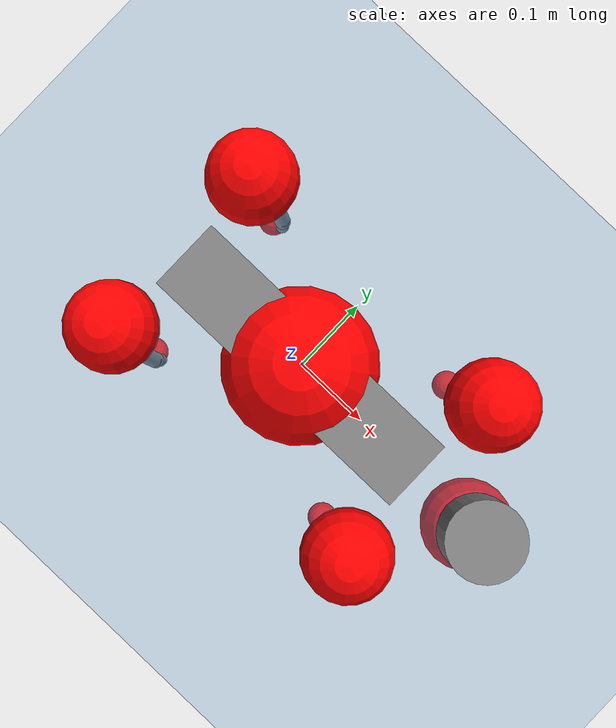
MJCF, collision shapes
<mujoco model="go2">
  <compiler angle="radian" assetdir="assets" balanceinertia="true" inertiafromgeom="false"/>

  <option timestep="0.005" density="1.2" viscosity="2e-05"/>

  <size nkey="1"/>

  <visual>
    <quality shadowsize="8192"/>
    <map shadowclip="0.5"/>
  </visual>

  <default>
    <default class="/">
      <geom contype="0" conaffinity="0" group="1" solref="-1000 -80"/>
      <site size="0.01 0.005 0.005" group="5"/>
      <general forcelimited="true" biastype="affine" gainprm="20" biasprm="0 -20 -0.5"/>
      <default class="go2">
        <joint armature="0.01" damping="0.01" frictionloss="0.2"/>
        <geom condim="1" margin="0.001"/>
        <default class="visual">
          <geom type="mesh" group="2"/>
        </default>
        <default class="collision">
          <geom group="3"/>
          <default class="foot">
            <geom size="0.022 0 0" condim="6" priority="1" friction="0.8 0.02 0.01" solimp="0.015 1 0.022"/>
          </default>
        </default>
        <default class="reward_collision_sphere">
          <geom group="5" rgba="1 0 0 1"/>
        </default>
      </default>
    </default>
  </default>

  <asset>
    <texture type="skybox" colorspace="auto" name="//unnamed_texture_0" builtin="gradient" rgb1="0.95 0.95 0.95" rgb2="0.95 0.95 0.95" width="100" height="600"/>
    <texture type="2d" colorspace="auto" name="texplane" builtin="checker" rgb1="0.345 0.575 0.748" rgb2="0.345 0.575 0.748" markrgb="1 1 1" width="512" height="512"/>
    <material name="MatPlane" class="/" texture="texplane" texuniform="true" texrepeat="2 2" specular="0.9"/>
    <material name="metal" class="/" rgba="0.9 0.95 0.95 1"/>
    <material name="black" class="/" rgba="0 0 0 1"/>
    <material name="white" class="/"/>
    <material name="gray" class="/" rgba="0.671705 0.692426 0.77427 1"/>
    <mesh name="base_0" class="/" file="base_0.obj"/>
    <mesh name="base_1" class="/" file="base_1.obj"/>
    <mesh name="base_2" class="/" file="base_2.obj"/>
    <mesh name="base_3" class="/" file="base_3.obj"/>
    <mesh name="base_4" class="/" file="base_4.obj"/>
    <mesh name="hip_0" class="/" file="hip_0.obj"/>
    <mesh name="hip_1" class="/" file="hip_1.obj"/>
    <mesh name="thigh_0" class="/" file="thigh_0.obj"/>
    <mesh name="thigh_1" class="/" file="thigh_1.obj"/>
    <mesh name="thigh_mirror_0" class="/" file="thigh_mirror_0.obj"/>
    <mesh name="thigh_mirror_1" class="/" file="thigh_mirror_1.obj"/>
    <mesh name="calf_0" class="/" file="calf_0.obj"/>
    <mesh name="calf_1" class="/" file="calf_1.obj"/>
    <mesh name="calf_mirror_0" class="/" file="calf_mirror_0.obj"/>
    <mesh name="calf_mirror_1" class="/" file="calf_mirror_1.obj"/>
    <mesh name="foot" class="/" file="foot.obj"/>
  </asset>

  <worldbody>
    <geom name="floor" class="/" size="100 100 0.125" type="plane" group="0" material="MatPlane"/>
    <light name="toplight_shadow" class="/" pos="0 0 5" dir="0.0990148 0.0990148 -0.990148" type="directional" ambient="0.04 0.04 0.04" diffuse="0.55 0.55 0.55" specular="0.12 0.12 0.12"/>
    <light name="toplight_fill" class="/" pos="0 0 5" dir="0.0990148 0.0990148 -0.990148" type="directional" castshadow="false" ambient="0.04 0.04 0.04" diffuse="0.3 0.3 0.3" specular="0.08 0.08 0.08"/>
    <body name="trunk" childclass="go2" pos="-0.000394373 -0.00270582 -0.00103915" quat="1 -2.19607e-06 3.6448e-05 3.13419e-05">
      <inertial pos="0.0234876 -0.0026949 -0.00449479" quat="-0.00211462 0.712521 -0.00469501 0.701632" mass="6.94226" diaginertia="0.138999 0.154723 0.0111497"/>
      <joint name="//unnamed_joint_0" type="free" armature="0" damping="0" frictionloss="0"/>
      <geom name="//unnamed_geom_1" class="visual" material="black" mesh="base_0"/>
      <geom name="//unnamed_geom_2" class="visual" material="black" mesh="base_1"/>
      <geom name="//unnamed_geom_3" class="visual" material="black" mesh="base_2"/>
      <geom name="//unnamed_geom_4" class="visual" material="white" mesh="base_3"/>
      <geom name="//unnamed_geom_5" class="visual" material="gray" mesh="base_4"/>
      <geom name="trunk_1" class="collision" size="0.18917 0.047016 0.0573244" type="box"/>
      <geom name="trunk_2" class="collision" size="0.0502845 0.0452561" pos="0.302372 0 0.00855311" type="cylinder"/>
      <geom name="trunk_3" class="collision" size="0.0472675" pos="0.31086 0 -0.0513187"/>
      <geom name="//unnamed_geom_9" class="reward_collision_sphere" size="0.100569"/>
      <geom name="//unnamed_geom_10" class="reward_collision_sphere" size="0.0603414" pos="0.297067 0 -0.038489"/>
      <site name="imu" pos="-0.0133151 0.0134667 0.0226523" size="0.0100569"/>
      <camera name="track" pos="0 -2.20161 0" quat="0.707107 0.707107 0 0" mode="trackcom"/>
      <camera name="ego_camera" pos="0.331018 0 0.038489" quat="-0.5 -0.5 0.5 0.5"/>
      <body name="FL_hip" pos="0.207576 0.0520249 0.00162609" quat="0.999999 0.000289893 0.000928605 0.000573228">
        <inertial pos="-0.00494942 0.00212016 0.0023219" quat="0.494248 0.5025 0.503105 0.500097" mass="0.666411" diaginertia="0.00118736 0.000924799 0.000218513"/>
        <joint name="FL_hip_joint" pos="0 0 0" axis="0.999962 -0.00657334 -0.00578674" stiffness="0.00931856" range="-1.03397 1.0992" armature="0.0102808" damping="0" frictionloss="0.229822"/>
        <geom name="//unnamed_geom_11" class="visual" material="metal" mesh="hip_0"/>
        <geom name="//unnamed_geom_12" class="visual" material="gray" mesh="hip_1"/>
        <geom name="//unnamed_geom_13" class="collision" size="0.0462618 0.0201138" pos="0 0.0880645 0" quat="0.707107 0.707107 0 0" type="cylinder"/>
        <geom name="//unnamed_geom_14" class="reward_collision_sphere" size="0.0603414" pos="0 0.0770564 0"/>
        <body name="FL_thigh" pos="-0.000996448 0.106007 0.000136217" quat="0.999999 -0.00157199 -8.6241e-05 0.000179637">
          <inertial pos="-0.00113427 -0.0217165 -0.0285495" quat="0.83056 0.0759739 -0.0275144 0.551036" mass="1.17039" diaginertia="0.00782975 0.00932966 0.000394216"/>
          <joint name="FL_thigh_joint" pos="0 0 0" axis="-0.0162109 0.999859 0.00435312" stiffness="0.00375944" range="-1.52031 3.52586" armature="0.0113388" damping="0.00178266" frictionloss="0.217282"/>
          <geom name="//unnamed_geom_15" class="visual" material="metal" mesh="thigh_0"/>
          <geom name="//unnamed_geom_16" class="visual" material="gray" mesh="thigh_1"/>
          <geom name="//unnamed_geom_17" class="collision" size="0.107106 0.0123197 0.0170967" pos="0 0 -0.0910906" quat="0.707107 0 0.707107 0" type="box"/>
          <body name="FL_calf" pos="-0.00111758 -0.0019937 -0.18397" quat="0.999999 -0.000535035 -0.000183534 -0.00121096">
            <inertial pos="0.0095375 -0.000752265 -0.121756" quat="0.710163 0.00108884 -0.00297022 0.70403" mass="0.24989" diaginertia="0.00194532 0.00242772 2.40113e-05"/>
            <joint name="FL_calf_joint" pos="0 0 0" axis="-0.00836575 0.999954 0.00461803" stiffness="0.000428749" range="-2.74815 -0.827021" armature="0.00862823" damping="0.00453565" frictionloss="0.204222"/>
            <geom name="//unnamed_geom_18" class="visual" material="gray" mesh="calf_0"/>
            <geom name="//unnamed_geom_19" class="visual" material="black" mesh="calf_1"/>
            <geom name="FL_calf0" class="collision" size="0.0120683 0.0603414" pos="0.00848764 0 -0.0513187" quat="0.994493 0 -0.104807 0" type="cylinder"/>
            <geom name="//unnamed_geom_21" class="collision" size="0.0110626 0.0326849" pos="0.0212191 0 -0.126586" quat="0.999688 0 0.0249974 0" type="cylinder"/>
            <geom name="//unnamed_geom_22" class="visual" pos="0 0 -0.182181" quat="1 0 0 0" material="black" mesh="foot"/>
            <geom name="FL_foot" class="foot" size="0.0160417" pos="-0.00212191 0 -0.182181"/>
            <geom name="//unnamed_geom_24" class="reward_collision_sphere" size="0.0251423"/>
            <geom name="//unnamed_geom_25" class="reward_collision_sphere" size="0.0251423" pos="-0.00212191 0 -0.182181"/>
            <site name="FL_foot" class="foot" pos="-0.00212191 0 -0.182181" size="0.0100569"/>
          </body>
        </body>
      </body>
      <body name="FR_hip" pos="0.205584 -0.0540159 -0.00244712" quat="1 4.6969e-05 -0.000234023 0.000126961">
        <inertial pos="-0.00664588 -0.00267312 0.000435408" quat="0.501063 0.504056 0.500145 0.494691" mass="0.661555" diaginertia="0.00115859 0.000942294 0.000224039"/>
        <joint name="FR_hip_joint" pos="0 0 0" axis="0.999899 -0.011408 0.00842535" range="-1.05035 1.06717" armature="0.0104783" damping="0.0113601" frictionloss="0.215886"/>
        <geom name="//unnamed_geom_26" class="visual" pos="0 2.13865e-09 9.17311e-08" quat="4.63268e-05 1 0 0" material="metal" mesh="hip_0"/>
        <geom name="//unnamed_geom_27" class="visual" pos="0 3.46701e-09 -2.26886e-07" quat="4.63268e-05 1 0 0" material="gray" mesh="hip_1"/>
        <geom name="//unnamed_geom_28" class="collision" size="0.0462618 0.0201138" pos="0 -0.0880645 0" quat="0.707107 0.707107 0 0" type="cylinder"/>
        <geom name="//unnamed_geom_29" class="reward_collision_sphere" size="0.0603414" pos="0 -0.0770564 0"/>
        <body name="FR_thigh" pos="0.00164526 -0.104391 0.00135198" quat="0.999999 0.000337983 -0.000295647 -0.00119236">
          <inertial pos="-0.00515705 0.0234359 -0.027147" quat="0.543363 -0.0298801 0.084092 0.834741" mass="1.25116" diaginertia="0.00814555 0.00975821 0.000405839"/>
          <joint name="FR_thigh_joint" pos="0 0 0" axis="-0.000709699 -0.999986 -0.00526071" range="-3.5222 1.56767" armature="0.00953548" damping="0.0167712" frictionloss="0.199939"/>
          <geom name="//unnamed_geom_30" class="visual" material="metal" mesh="thigh_mirror_0"/>
          <geom name="//unnamed_geom_31" class="visual" material="gray" mesh="thigh_mirror_1"/>
          <geom name="//unnamed_geom_32" class="collision" size="0.107106 0.0123197 0.0170967" pos="0 0 -0.0910906" quat="0.707107 0 0.707107 0" type="box"/>
          <body name="FR_calf" pos="-0.00210514 -0.00172118 -0.184353" quat="0.999999 4.12566e-05 -0.000598928 0.000987989">
            <inertial pos="0.00867205 0.00085661 -0.118456" quat="0.704765 -0.0106887 -0.0108416 0.709278" mass="0.242646" diaginertia="0.00200652 0.00236839 2.46933e-05"/>
            <joint name="FR_calf_joint" pos="0 0 0" axis="0.00516685 -0.999981 0.00347739" range="0.822599 2.7106" armature="0.0108972" damping="0.0179283" frictionloss="0.177224"/>
            <geom name="//unnamed_geom_33" class="visual" material="gray" mesh="calf_mirror_0"/>
            <geom name="//unnamed_geom_34" class="visual" material="black" mesh="calf_mirror_1"/>
            <geom name="FR_calf0" class="collision" size="0.013074 0.0603414" pos="0.0106095 0 -0.0513187" quat="0.995004 0 -0.0998334 0" type="cylinder"/>
            <geom name="//unnamed_geom_36" class="collision" size="0.0110626 0.0326849" pos="0.0212191 0 -0.126586" quat="0.999688 0 0.0249974 0" type="cylinder"/>
            <geom name="//unnamed_geom_37" class="visual" pos="0 0 -0.182181" quat="1 0 0 0" material="black" mesh="foot"/>
            <geom name="FR_foot" class="foot" size="0.0201248" pos="-0.00212191 0 -0.182181"/>
            <geom name="//unnamed_geom_39" class="reward_collision_sphere" size="0.0251423"/>
            <geom name="//unnamed_geom_40" class="reward_collision_sphere" size="0.0251423" pos="-0.00212191 0 -0.182181"/>
            <site name="FR_foot" class="foot" pos="-0.00212191 0 -0.182181" size="0.0100569"/>
          </body>
        </body>
      </body>
      <body name="RL_hip" pos="-0.205947 0.0521607 0.00196762" quat="1 -0.000798821 -2.64305e-05 -6.81636e-05">
        <inertial pos="0.0060217 -0.000226732 0.00265741" quat="0.503747 0.496505 0.500336 0.499386" mass="0.714435" diaginertia="0.00121842 0.000987191 0.000223765"/>
        <joint name="RL_hip_joint" pos="0 0 0" axis="-0.999626 0.011563 0.0247685" range="-1.04472 1.00208" armature="0.0100903" damping="0.00840181" frictionloss="0.19819"/>
        <geom name="//unnamed_geom_41" class="visual" pos="-1.79148e-09 0 -3.51172e-07" quat="4.63268e-05 0 1 0" material="metal" mesh="hip_0"/>
        <geom name="//unnamed_geom_42" class="visual" pos="-2.90421e-09 0 -3.11439e-07" quat="4.63268e-05 0 1 0" material="gray" mesh="hip_1"/>
        <geom name="//unnamed_geom_43" class="collision" size="0.0462618 0.0201138" pos="0 0.0880645 0" quat="0.707107 0.707107 0 0" type="cylinder"/>
        <geom name="//unnamed_geom_44" class="reward_collision_sphere" size="0.0603414" pos="0 0.0770564 0"/>
        <body name="RL_thigh" pos="-0.0024595 0.105024 -0.000849308" quat="1 1.63991e-05 2.87687e-05 5.60625e-05">
          <inertial pos="-0.00378684 -0.0231511 -0.0298073" quat="0.82902 0.0714415 -0.0190788 0.554308" mass="1.20867" diaginertia="0.0081084 0.00987383 0.000415763"/>
          <joint name="RL_thigh_joint" pos="0 0 0" axis="0.00111046 0.99997 0.00765737" stiffness="0.00567097" range="-0.576975 4.59335" armature="0.00927082" damping="0" frictionloss="0.211666"/>
          <geom name="//unnamed_geom_45" class="visual" material="metal" mesh="thigh_0"/>
          <geom name="//unnamed_geom_46" class="visual" material="gray" mesh="thigh_1"/>
          <geom name="//unnamed_geom_47" class="collision" size="0.107106 0.0123197 0.0170967" pos="0 0 -0.0910906" quat="0.707107 0 0.707107 0" type="box"/>
          <body name="RL_calf" pos="-0.00198211 -0.00131223 -0.181508" quat="1 1.9179e-05 -3.94849e-06 2.85519e-05">
            <inertial pos="0.00763042 4.01595e-06 -0.119996" quat="0.710264 0.00503964 -0.00485221 0.703901" mass="0.262865" diaginertia="0.00213187 0.00247023 2.50686e-05"/>
            <joint name="RL_calf_joint" pos="0 0 0" axis="-0.000548752 0.999902 0.0139853" stiffness="0.00299662" range="-2.69735 -0.891572" armature="0.00998555" damping="0" frictionloss="0.197775"/>
            <geom name="//unnamed_geom_48" class="visual" material="gray" mesh="calf_0"/>
            <geom name="//unnamed_geom_49" class="visual" material="black" mesh="calf_1"/>
            <geom name="RL_calf0" class="collision" size="0.013074 0.0603414" pos="0.0106095 0 -0.0513187" quat="0.995004 0 -0.0998334 0" type="cylinder"/>
            <geom name="//unnamed_geom_51" class="collision" size="0.0110626 0.0326849" pos="0.0212191 0 -0.126586" quat="0.999688 0 0.0249974 0" type="cylinder"/>
            <geom name="//unnamed_geom_52" class="visual" pos="0 0 -0.182181" quat="1 0 0 0" material="black" mesh="foot"/>
            <geom name="RL_foot" class="foot" size="0.0210412" pos="-0.00212191 0 -0.182181"/>
            <geom name="//unnamed_geom_54" class="reward_collision_sphere" size="0.0251423"/>
            <geom name="//unnamed_geom_55" class="reward_collision_sphere" size="0.0251423" pos="-0.00212191 0 -0.182181"/>
            <site name="RL_foot" class="foot" pos="-0.00212191 0 -0.182181" size="0.0100569"/>
          </body>
        </body>
      </body>
      <body name="RR_hip" pos="-0.205227 -0.0503152 -0.00314449" quat="0.999999 -0.00040509 -0.000994946 0.000100817">
        <inertial pos="0.00591414 0.000429218 -0.00310275" quat="0.500561 0.496552 0.497797 0.505047" mass="0.708" diaginertia="0.00127091 0.00101642 0.000232473"/>
        <joint name="RR_hip_joint" pos="0 0 0" axis="-0.999969 0.00141775 0.00772632" stiffness="0.00947179" range="-1.02541 1.00801" armature="0.0100048" damping="0.00366688" frictionloss="0.190523"/>
        <geom name="//unnamed_geom_56" class="visual" pos="1.79286e-09 2.13865e-09 -4.42903e-07" quat="2.14617e-09 4.63268e-05 4.63268e-05 -1" material="metal" mesh="hip_0"/>
        <geom name="//unnamed_geom_57" class="visual" pos="2.90079e-09 3.46701e-09 -8.45533e-08" quat="2.14617e-09 4.63268e-05 4.63268e-05 -1" material="gray" mesh="hip_1"/>
        <geom name="//unnamed_geom_58" class="collision" size="0.0462618 0.0201138" pos="0 -0.0880645 0" quat="0.707107 0.707107 0 0" type="cylinder"/>
        <geom name="//unnamed_geom_59" class="reward_collision_sphere" size="0.0603414" pos="0 -0.0770564 0"/>
        <body name="RR_thigh" pos="0.000100209 -0.102584 0.00166057" quat="0.999999 -0.00101499 -0.000590558 0.000399435">
          <inertial pos="-0.00350192 0.0225704 -0.0252659" quat="0.551657 -0.0199815 0.0846078 0.829528" mass="1.1225" diaginertia="0.00762298 0.00908809 0.000388437"/>
          <joint name="RR_thigh_joint" pos="0 0 0" axis="-0.000370758 -1 -0.000835784" range="-4.55253 0.579183" armature="0.0104249" damping="0.00806885" frictionloss="0.196231"/>
          <geom name="//unnamed_geom_60" class="visual" material="metal" mesh="thigh_mirror_0"/>
          <geom name="//unnamed_geom_61" class="visual" material="gray" mesh="thigh_mirror_1"/>
          <geom name="//unnamed_geom_62" class="collision" size="0.107106 0.0123197 0.0170967" pos="0 0 -0.0910906" quat="0.707107 0 0.707107 0" type="box"/>
          <body name="RR_calf" pos="0.000217428 0.000386685 -0.180881" quat="0.999999 -8.72319e-05 0.000877437 0.000737337">
            <inertial pos="0.00717252 0.000705922 -0.12132" quat="0.703434 -0.00160727 0.00960127 0.710694" mass="0.24947" diaginertia="0.00206324 0.00235256 2.43904e-05"/>
            <joint name="RR_calf_joint" pos="0 0 0" axis="-0.00211443 -0.999998 -4.71189e-05" range="0.783492 2.76182" armature="0.00898781" damping="0.0126214" frictionloss="0.206133"/>
            <geom name="//unnamed_geom_63" class="visual" material="gray" mesh="calf_mirror_0"/>
            <geom name="//unnamed_geom_64" class="visual" material="black" mesh="calf_mirror_1"/>
            <geom name="RR_calf0" class="collision" size="0.013074 0.0603414" pos="0.0106095 0 -0.0513187" quat="0.995004 0 -0.0998334 0" type="cylinder"/>
            <geom name="//unnamed_geom_66" class="collision" size="0.0110626 0.0326849" pos="0.0212191 0 -0.126586" quat="0.999688 0 0.0249974 0" type="cylinder"/>
            <geom name="//unnamed_geom_67" class="visual" pos="0 0 -0.182181" quat="1 0 0 0" material="black" mesh="foot"/>
            <geom name="RR_foot" class="foot" size="0.019894" pos="-0.00212191 0 -0.182181"/>
            <geom name="//unnamed_geom_69" class="reward_collision_sphere" size="0.0251423"/>
            <geom name="//unnamed_geom_70" class="reward_collision_sphere" size="0.0251423" pos="-0.00212191 0 -0.182181"/>
            <site name="RR_foot" class="foot" pos="-0.00212191 0 -0.182181" size="0.0100569"/>
          </body>
        </body>
      </body>
    </body>
  </worldbody>

  <contact>
    <pair class="/" geom1="floor" geom2="FL_foot" name="//unnamed_contact_0"/>
    <pair class="/" geom1="floor" geom2="FR_foot" name="//unnamed_contact_1"/>
    <pair class="/" geom1="floor" geom2="RL_foot" name="//unnamed_contact_2"/>
    <pair class="/" geom1="floor" geom2="RR_foot" name="//unnamed_contact_3"/>
  </contact>

  <actuator>
    <general name="FL_hip" class="/" joint="FL_hip_joint" forcerange="-24.6104 24.6104" gainprm="21.0588" biasprm="0 -21.0588 -0.521087"/>
    <general name="FL_thigh" class="/" joint="FL_thigh_joint" forcerange="-21.3245 21.3245" gainprm="21.0588" biasprm="0 -21.0588 -0.521087"/>
    <general name="FL_calf" class="/" joint="FL_calf_joint" forcerange="-43.9177 43.9177" gainprm="21.0588" biasprm="0 -21.0588 -0.521087"/>
    <general name="FR_hip" class="/" joint="FR_hip_joint" forcerange="-25.3339 25.3339" gainprm="21.0588" biasprm="0 -21.0588 -0.521087"/>
    <general name="FR_thigh" class="/" joint="FR_thigh_joint" forcerange="-25.3135 25.3135" gainprm="21.0588" biasprm="0 -21.0588 -0.521087"/>
    <general name="FR_calf" class="/" joint="FR_calf_joint" forcerange="-50.2317 50.2317" gainprm="21.0588" biasprm="0 -21.0588 -0.521087"/>
    <general name="RL_hip" class="/" joint="RL_hip_joint" forcerange="-23.6234 23.6234" gainprm="21.0588" biasprm="0 -21.0588 -0.521087"/>
    <general name="RL_thigh" class="/" joint="RL_thigh_joint" forcerange="-23.111 23.111" gainprm="21.0588" biasprm="0 -21.0588 -0.521087"/>
    <general name="RL_calf" class="/" joint="RL_calf_joint" forcerange="-40.9673 40.9673" gainprm="21.0588" biasprm="0 -21.0588 -0.521087"/>
    <general name="RR_hip" class="/" joint="RR_hip_joint" forcerange="-22.6794 22.6794" gainprm="21.0588" biasprm="0 -21.0588 -0.521087"/>
    <general name="RR_thigh" class="/" joint="RR_thigh_joint" forcerange="-24.6483 24.6483" gainprm="21.0588" biasprm="0 -21.0588 -0.521087"/>
    <general name="RR_calf" class="/" joint="RR_calf_joint" forcerange="-46.8138 46.8138" gainprm="21.0588" biasprm="0 -21.0588 -0.521087"/>
  </actuator>

  <sensor>
    <gyro site="imu" name="imu_angular_velocity"/>
    <velocimeter site="imu" name="imu_linear_velocity"/>
    <framelinvel objtype="site" objname="FL_foot" name="FL_foot_global_linear_velocity"/>
    <framelinvel objtype="site" objname="FR_foot" name="FR_foot_global_linear_velocity"/>
    <framelinvel objtype="site" objname="RL_foot" name="RL_foot_global_linear_velocity"/>
    <framelinvel objtype="site" objname="RR_foot" name="RR_foot_global_linear_velocity"/>
  </sensor>

  <keyframe>
    <key name="home" qpos="0 0 0.325 1 0 0 0 0.1 0.8 -1.5 -0.1 -0.8 1.5 -0.1 0.8 -1.5 0.1 -0.8 1.5"/>
  </keyframe>
</mujoco>
